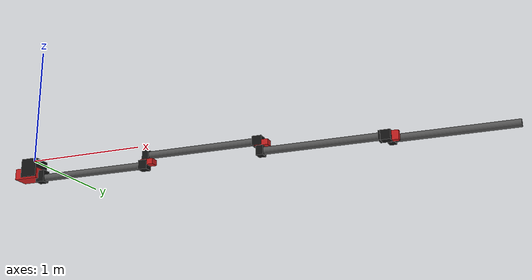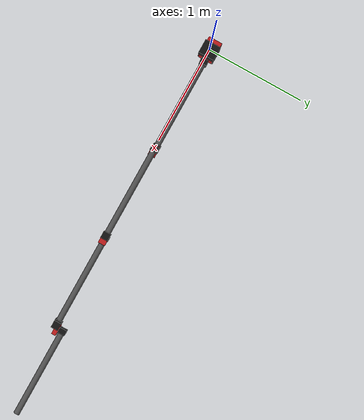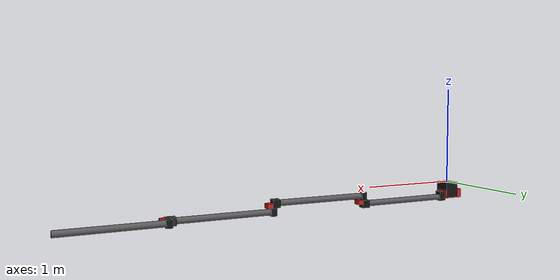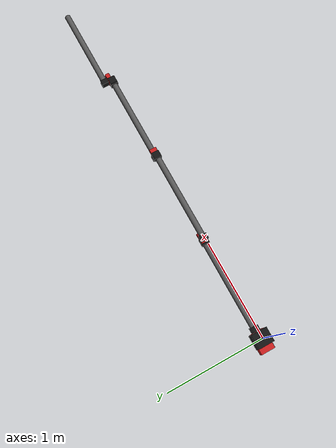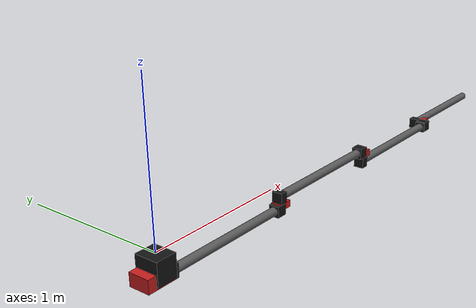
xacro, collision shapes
<?xml version="1.0"?>

<robot name="LIBRA-I" xmlns:xacro="http://www.ros.org/wiki/xacro">

    <!-- Includes -->
    <xacro:include filename="$(find libra)/models/common/common.urdf.xacro"/>

    <xacro:include filename="$(find libra)/models/assemblies/2djnt.urdf.xacro" />
    <xacro:include filename="$(find libra)/models/assemblies/arm.urdf.xacro" />

    <!-- Model Construction -->
    <!-- NOTE
        Black = static elements
        Gray = static elements (links only)
        Red = active elements (primary actuators)
        Purple = active elements (secondary actuators)
    -->
    <link name="base_link"/>
    <xacro:spawn_2djnt parent="base_link"/>
    <xacro:spawn_arm parent="2djnt_out_arm_link"/>

</robot>

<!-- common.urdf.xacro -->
<robot xmlns:xacro="http://www.ros.org/wiki/xacro">

    <!-- Prevent duplicate inclusion -->
    <xacro:unless value="$(optenv COMMON_URDF_INCLUDED false)">
        <xacro:property name="COMMON_URDF_INCLUDED" value="true"/>

        <!-- ********************[ PROPERTIES ]******************** -->

        <xacro:property name="PI" value="3.14159265359"/>

        <!-- ********************[ MATERIALS ]******************** -->

        <!-- Colors: Monochrome -->
        <material name="black">
            <color rgba="${20/255} ${20/255} ${20/255} 1"/>
        </material>
        <material name="gray">
            <color rgba="${90/255} ${90/255} ${90/255} 1"/>
        </material>
        <material name="silver">
            <color rgba="${170/255} ${170/255} ${170/255} 1"/>
        </material>
        <material name="white">
            <color rgba="${250/255} ${250/255} ${250/255} 1"/>
        </material>

        <!-- Colors: Primary & Secondary -->
        <material name="red">
            <color rgba="${200/255} ${30/255} ${30/255} 1"/>
        </material>
        <material name="yellow">
            <color rgba="${225/255} ${200/255} ${40/255} 1"/>
        </material>
        <material name="blue">
            <color rgba="${40/255} ${110/255} ${200/255} 1"/>
        </material>

        <material name="orange">
            <color rgba="${220/255} ${110/255} ${40/255} 1"/>
        </material>
        <material name="green">
            <color rgba="${50/255} ${170/255} ${90/255} 1"/>
        </material>
        <material name="purple">
            <color rgba="${150/255} ${50/255} ${200/255} 1"/>
        </material>

        <!-- ********************[ MACROS ]******************** -->

        <xacro:macro name="box_inertia" params="m x y z">
            <inertial>
                <mass value="${m}"/>
                <inertia ixx="${(m/12) * (y*y + z*z)}" ixy="0.0" ixz="0.0"
                        iyy="${(m/12) * (x*x + z*z)}" iyz="0.0"
                        izz="${(m/12) * (x*x + y*y)}"/>
            </inertial>
        </xacro:macro>

        <xacro:macro name="cylinder_inertia" params="m r h">
            <inertial>
                <mass value="${m}"/>
                <inertia ixx="${(m/12) * (3*r*r + h*h)}" ixy = "0" ixz = "0"
                        iyy="${(m/12) * (3*r*r + h*h)}" iyz = "0"
                        izz="${(m/2) * (r*r)}"/>
            </inertial>
        </xacro:macro>

        <xacro:macro name="sphere_inertia" params="m r">
            <inertial>
                <mass value="${m}"/>
                <inertia ixx="${(2/5) * m * (r*r)}" ixy="0.0" ixz="0.0"
                        iyy="${(2/5) * m * (r*r)}" iyz="0.0"
                        izz="${(2/5) * m * (r*r)}"/>
            </inertial>
        </xacro:macro>

    </xacro:unless>
</robot>

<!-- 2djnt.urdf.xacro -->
<robot xmlns:xacro="http://www.ros.org/wiki/xacro">

    <!-- Definition -->
    <xacro:macro name="spawn_2djnt" params="parent">

        <!-- ********************[ PROPERTIES ]******************** -->

        <!-- Stator (static part) -->
        <xacro:property name="d_2djnt_s_L" value="0.143"/>
        <xacro:property name="d_2djnt_s_W" value="0.165"/>
        <xacro:property name="d_2djnt_s_H" value="0.1565"/>
        <xacro:property name="m_2djnt_s" value="2.056"/>

        <!-- Rotor (moved part) -->
        <xacro:property name="d_2djnt_r_L" value="0.204"/>
        <xacro:property name="d_2djnt_r_W" value="0.145"/>
        <xacro:property name="d_2djnt_r_H" value="0.090"/>
        <xacro:property name="m_2djnt_r" value="1.317"/>

        <!-- Arm Connector -->
        <xacro:property name="d_conn_arm_L" value="0.076"/>
        <xacro:property name="d_conn_arm_W" value="0.076"/>
        <xacro:property name="d_conn_arm_H" value="0.0985"/>
        <xacro:property name="m_conn_arm" value="0.326"/>

        <!-- ********************[ LINKS ]******************** -->
        <!-- NOTE
            X = forward/red, Y = left/green, Z = upwards/blue
        -->

        <!-- Stator (static part) -->
        <link name="2d_stator_link">
            <visual>
                <origin xyz="-0.029 0 -0.042" rpy="${PI/2} 0 ${PI/2}"/>
                <geometry><mesh filename="package://libra/meshes/2d-stator.stl" scale="0.001 0.001 0.001"/></geometry>
                <material name="black"/>
            </visual>
            <collision>
                <origin xyz="0 0 0" rpy="0 0 0"/>
                <geometry><box size="${d_2djnt_s_L} ${d_2djnt_s_W} ${d_2djnt_s_H}"/></geometry>
            </collision>
            <xacro:box_inertia m="${m_2djnt_s}" x="${d_2djnt_s_L}" y="${d_2djnt_s_W}" z="${d_2djnt_s_H}"/>
        </link>
        <joint name="${parent}_to_2d_stator" type="fixed">
            <parent link="${parent}"/>
            <child link="2d_stator_link"/>
            <origin xyz="0 0 -${d_2djnt_s_H/2}" rpy="0 0 0"/>
        </joint>

        <!-- Rotor (moved part) -->
        <link name="2d_rotor_pitch_link"/>
        <joint name="Pitch" type="revolute">
            <parent link="2d_stator_link"/>
            <child link="2d_rotor_pitch_link"/>
            <origin xyz="${-d_2djnt_s_L/2 - 0.059 + d_2djnt_r_L/2} 0 ${d_2djnt_s_H/2 - 0.080 - d_2djnt_r_H/2}" rpy="0 0 0"/>
            <axis xyz="0 1 0"/>
            <limit lower="${-10 * PI / 180.0}" upper="${90 * PI / 180.0}" effort="100" velocity="1.0"/>
        </joint>

        <link name="2d_rotor_roll_link">
            <visual>
                <origin xyz="0 0 0.0050" rpy="-${PI/2} ${PI} -${PI/2}"/>
                <geometry><mesh filename="package://libra/meshes/2d-rotor.stl" scale="0.001 0.001 0.001"/></geometry>
                <material name="red"/>
            </visual>
            <collision>
                <origin xyz="0 0 0" rpy="0 0 0"/>
                <geometry><box size="${d_2djnt_r_L} ${d_2djnt_r_W} ${d_2djnt_r_H}"/></geometry>
            </collision>
            <xacro:box_inertia m="${m_2djnt_r}" x="${d_2djnt_r_L}" y="${d_2djnt_r_W}" z="${d_2djnt_r_H}"/>
        </link>
        <joint name="Roll" type="revolute">
            <parent link="2d_rotor_pitch_link"/>
            <child link="2d_rotor_roll_link"/>
            <origin xyz="0 0 0" rpy="0 0 0"/>
            <axis xyz="1 0 0"/>
            <limit lower="${-10 * PI / 180.0}" upper="${10 * PI / 180.0}" effort="100" velocity="1.0"/>
        </joint>

        <!-- Arm Connector -->
        <link name="arm_conn_link">
            <visual>
                <origin xyz="0.0030 0 0.0267" rpy="${PI} 0 0"/>
                <geometry><mesh filename="package://libra/meshes/2d-arm_connector.stl" scale="0.001 0.001 0.001"/></geometry>
                <material name="black"/>
            </visual>
            <collision>
                <origin xyz="0 0 0" rpy="0 0 0"/>
                <geometry><box size="${d_conn_arm_L} ${d_conn_arm_W} ${d_conn_arm_H}"/></geometry>
            </collision>
            <xacro:box_inertia m="${m_conn_arm}" x="${d_conn_arm_L}" y="${d_conn_arm_W}" z="${d_conn_arm_H}"/>
        </link>
        <joint name="2d_roll_to_2d_out_arm" type="fixed">
            <parent link="2d_rotor_roll_link"/>
            <child link="arm_conn_link"/>
            <origin xyz="${(d_2djnt_r_L/2 - 0.022) + d_conn_arm_L/2} 0 ${d_2djnt_r_H/2 - 0.020 - d_conn_arm_H/2}" rpy="0 0 0"/>
        </joint>

        <!-- Outbound Link -->
        <link name="2djnt_out_arm_link"/>
        <joint name="arm_conn_to_2d_out_arm" type="fixed">
            <parent link="arm_conn_link"/>
            <child link="2djnt_out_arm_link"/>
            <origin xyz="${d_conn_arm_L/2} 0 -${d_conn_arm_H/2 - 0.038}" rpy="0 0 0"/>
        </joint>

        <!-- ********************[ GAZEBO CONFIG ]******************** -->

        <gazebo reference="2d_stator_link"><material>Gazebo/Black</material></gazebo>
        <gazebo reference="2d_rotor_roll_link"><material>Gazebo/Red</material></gazebo>
        <gazebo reference="arm_conn_link"><material>Gazebo/Black</material></gazebo>

    </xacro:macro>
</robot>

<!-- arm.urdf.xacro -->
<robot xmlns:xacro="http://www.ros.org/wiki/xacro">

    <!-- Definition -->
    <xacro:macro name="spawn_arm" params="parent">

        <!-- ********************[ PROPERTIES ]******************** -->

        <!-- Arm Links -->
        <xacro:property name="d_arm_link_L" value="0.900"/>
        <xacro:property name="d_arm_link_R" value="0.030"/>
        <xacro:property name="m_arm_link" value="0.395"/>

        <!-- Joint Connectors -->
        <xacro:property name="d_conn_outer_L" value="0.076"/>
        <xacro:property name="d_conn_outer_W" value="0.076"/>
        <xacro:property name="d_conn_outer_H" value="0.076"/>
        <xacro:property name="m_conn_outer" value="0.192"/>

        <xacro:property name="d_conn_inner_L" value="0.056"/>
        <xacro:property name="d_conn_inner_W" value="0.076"/>
        <xacro:property name="d_conn_inner_H" value="0.076"/>
        <xacro:property name="m_conn_inner" value="0.169"/>

        <xacro:property name="d_adapter_L" value="0.017"/>
        <xacro:property name="d_adapter_W" value="0.076"/>
        <xacro:property name="d_adapter_H" value="0.076"/>
        <xacro:property name="m_adapter" value="0.131"/>

        <!-- HEBI X8-16 Actuators -->
        <xacro:property name="d_hebi_L" value="0.110"/>
        <xacro:property name="d_hebi_W" value="0.073"/>
        <xacro:property name="d_hebi_H" value="0.0451"/>
        <xacro:property name="m_hebi" value="0.490"/>

        <!-- ********************[ MACROS ]******************** -->

        <xacro:macro name="link_macro" params="name">
            <link name="${name}">
                <visual>
                    <origin xyz="0 0 0" rpy="0 ${PI/2} ${PI/2}"/>
                    <geometry>
                        <mesh filename="package://libra/meshes/arm-link.stl" scale="0.001 0.001 0.001"/>
                    </geometry>
                    <material name="gray"/>
                </visual>
                <collision>
                    <origin xyz="0 0 0" rpy="0 ${PI/2} 0"/>
                    <geometry>
                        <cylinder length="${d_arm_link_L}" radius="${d_arm_link_R}"/>
                    </geometry>
                </collision>
                <xacro:cylinder_inertia m="${m_arm_link}" r="${d_arm_link_R}" h="${d_arm_link_L}"/>
            </link>
        </xacro:macro>

        <xacro:macro name="joint_subassembly_macro" params="name parent_name origin_xyz origin_rpy rotation_dir:=1">
            <xacro:property name="inbound_correction" value="0.003"/>
            <xacro:property name="outbound_correction" value="0.005"/>

            <!-- Inbound Connection -->
            <link name="${name}_conn_outer_link">
                <visual>
                    <origin xyz="-${inbound_correction} 0 ${d_conn_outer_H/2}" rpy="${PI} 0 ${PI}"/>
                    <geometry>
                        <mesh filename="package://libra/meshes/conn_outer.stl" scale="0.001 0.001 0.001"/>
                    </geometry>
                    <material name="black"/>
                </visual>
                <collision>
                    <origin xyz="0 0 0" rpy="0 0 0"/>
                    <geometry>
                        <box size="${d_conn_outer_L} ${d_conn_outer_W} ${d_conn_outer_H}"/>
                    </geometry>
                </collision>
                <xacro:box_inertia m="${m_conn_outer}" x="${d_conn_outer_L}" y="${d_conn_outer_W}" z="${d_conn_outer_H}"/>
            </link>
            <joint name="${parent_name}_to_${name}_conn_outer" type="fixed">
                <parent link="${parent_name}_link"/>
                <child link="${name}_conn_outer_link"/>
                <origin xyz="${origin_xyz}" rpy="${origin_rpy}"/>
            </joint>

            <!-- Actuator -->
            <link name="${name}_hebi_stator_link">
                <visual>
                    <origin xyz="${d_conn_outer_L/2 - 0.05314 - inbound_correction} 0 0" rpy="0 0 0"/>
                    <geometry>
                        <mesh filename="package://libra/meshes/hebi_x8-16.stl" scale="0.001 0.001 0.001"/>
                    </geometry>
                    <material name="red"/>
                </visual>
                <collision>
                    <origin xyz="0 0 0" rpy="0 0 0"/>
                    <geometry>
                        <box size="${d_hebi_L} ${d_hebi_W} ${d_hebi_H}"/>
                    </geometry>
                </collision>
                <xacro:box_inertia m="${m_hebi}" x="${d_hebi_L}" y="${d_hebi_W}" z="${d_hebi_H}"/>
            </link>
            <joint name="${name}_conn_outer_to_${name}_hebi" type="fixed">
                <parent link="${name}_conn_outer_link"/>
                <child link="${name}_hebi_stator_link"/>
                <origin xyz="${d_conn_outer_L/2 + 0.05314 - d_hebi_L/2} 0 ${-d_conn_outer_H/2 + 0.036 + d_hebi_H/2}" rpy="0 0 0"/>
            </joint>

            <link name="${name}_hebi_rotor_link"/>
            <joint name="${name}" type="revolute">
                <parent link="${name}_hebi_stator_link"/>
                <child link="${name}_hebi_rotor_link"/>
                <origin xyz="${d_hebi_L/2 - 0.073} 0 ${d_hebi_H/2}" rpy="0 0 0"/>
                <axis xyz="0 0 ${rotation_dir}"/>  <!-- although this defines a yaw joint, it can be changed by providing a non-zero origin_rpy (see J3) -->
                <limit lower="-${PI}" upper="${PI}" effort="100" velocity="1.0"/>
            </joint>

            <!-- Outbound Connection -->
            <link name="${name}_conn_inner_link">
                <visual>
                    <origin xyz="-${outbound_correction} 0 -${d_conn_inner_H/2}" rpy="0 0 0"/>
                    <geometry>
                        <mesh filename="package://libra/meshes/conn_inner.stl" scale="0.001 0.001 0.001"/>
                    </geometry>
                    <material name="black"/>
                </visual>
                <collision>
                    <origin xyz="0 0 0" rpy="0 0 0"/>
                    <geometry>
                        <box size="${d_conn_inner_L} ${d_conn_inner_W} ${d_conn_inner_H}"/>
                    </geometry>
                </collision>
                <xacro:box_inertia m="${m_conn_inner}" x="${d_conn_inner_L}" y="${d_conn_inner_W}" z="${d_conn_inner_H}"/>
            </link>
            <joint name="${name}_hebi_to_${name}_conn_inner" type="fixed">
                <parent link="${name}_hebi_rotor_link"/>
                <child link="${name}_conn_inner_link"/>
                <origin xyz="${d_conn_inner_L/2 - 0.023} 0 ${d_conn_inner_H/2}" rpy="0 0 0"/>
            </joint>
        </xacro:macro>

        <!-- ********************[ LINKS ]******************** -->
        <!-- NOTE
            X = forward/red, Y = left/green, Z = upwards/blue
        -->

        <!-- Arm Segment #1 -->
        <xacro:link_macro name="L1_link"/>
        <joint name="parent_to_L1" type="fixed">
            <parent link="${parent}"/>
            <child link="L1_link"/>
            <origin xyz="${d_arm_link_L/2} 0 0" rpy="0 0 0"/>
        </joint>

        <xacro:joint_subassembly_macro name="J1" parent_name="L1"
            origin_xyz="${d_arm_link_L/2 + d_conn_outer_L/2} 0 0" origin_rpy="0 0 0"/>

        <!-- Arm Segment #2 -->
        <xacro:link_macro name="L2_link"/>
        <joint name="J1_to_L2" type="fixed">
            <parent link="J1_conn_inner_link"/>
            <child link="L2_link"/>
            <origin xyz="${d_conn_inner_L/2 + d_arm_link_L/2} 0 0" rpy="0 0 0"/>
        </joint>

        <xacro:joint_subassembly_macro name="J2" parent_name="L2"
            origin_xyz="${d_arm_link_L/2 + d_conn_outer_L/2} 0 0" origin_rpy="${PI} 0 0" rotation_dir="-1"/>

        <!-- Arm Segment #3 -->
        <xacro:link_macro name="L3_link"/>
        <joint name="J2_to_L3" type="fixed">
            <parent link="J2_conn_inner_link"/>
            <child link="L3_link"/>
            <origin xyz="${d_conn_inner_L/2 + d_arm_link_L/2} 0 0" rpy="0 0 0"/>
        </joint>

        <link name="J3_conn_adapter_link">
            <visual>
                <origin xyz="-${d_adapter_L/2} 0 0" rpy="${PI/2} -${PI/2} 0"/>
                <geometry>
                    <mesh filename="package://libra/meshes/conn_adapter.stl" scale="0.001 0.001 0.001"/>
                </geometry>
                <material name="black"/>
            </visual>
            <collision>
                <origin xyz="0 0 0" rpy="0 0 0"/>
                <geometry>
                    <box size="${d_adapter_L} ${d_adapter_W} ${d_adapter_H}"/>
                </geometry>
            </collision>
            <xacro:box_inertia m="${m_adapter}" x="${d_adapter_L}" y="${d_adapter_W}" z="${d_adapter_H}"/>
        </link>
        <joint name="L3_to_J3_conn_adapter" type="fixed">
            <parent link="L3_link"/>
            <child link="J3_conn_adapter_link"/>
            <origin xyz="${d_arm_link_L/2 + d_adapter_L/2} 0 0" rpy="0 0 0"/>
        </joint>

        <xacro:joint_subassembly_macro name="J3" parent_name="J3_conn_adapter"
            origin_xyz="${d_adapter_L/2 + d_conn_outer_L/2} 0 0" origin_rpy="${PI/2} 0 0" rotation_dir="-1"/>

        <!-- Arm Segment #4 -->
        <xacro:link_macro name="L4_link"/>
        <joint name="J3_to_L4" type="fixed">
            <parent link="J3_conn_inner_link"/>
            <child link="L4_link"/>
            <origin xyz="${d_conn_inner_L/2 + d_arm_link_L/2} 0 0" rpy="${PI/2} 0 0"/>
        </joint>

        <!-- Outbound Link -->
        <link name="arm_out_link"/>
        <joint name="L4_to_arm_out" type="fixed">
            <parent link="L4_link"/>
            <child link="arm_out_link"/>
            <origin xyz="${d_arm_link_L/2} 0 0" rpy="0 0 0"/>
        </joint>

        <!-- ********************[ GAZEBO CONFIG ]******************** -->

        <gazebo reference="L1_link"><material>Gazebo/Gray</material></gazebo>
        <gazebo reference="J1_link"><material>Gazebo/Red</material></gazebo>
        <gazebo reference="L2_link"><material>Gazebo/Gray</material></gazebo>
        <gazebo reference="J2_link"><material>Gazebo/Red</material></gazebo>
        <gazebo reference="L3_link"><material>Gazebo/Gray</material></gazebo>
        <gazebo reference="J3_link"><material>Gazebo/Red</material></gazebo>
        <gazebo reference="L4_link"><material>Gazebo/Gray</material></gazebo>

    </xacro:macro>
</robot>
